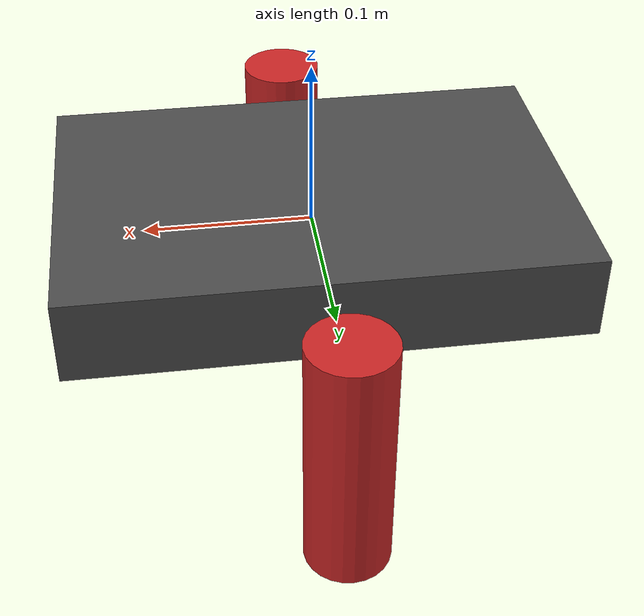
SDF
<sdf version='1.6'>
    <model name='magnus_wings'>

        <link name="base_link">
            <pose frame=''>0 0 0 0 -0 0</pose>
            <inertial>
                <pose frame=''>0 0 0 0 -0 0</pose>
                <mass>0.0</mass>
                <inertia>
                    <ixx>0</ixx>
                    <ixy>0</ixy>
                    <ixz>0</ixz>
                    <iyy>0</iyy>
                    <iyz>0</iyz>
                    <izz>0</izz>
                </inertia>
            </inertial>
            <collision name='base_link_collision'>
                <pose frame=''>0 0 0 0 -0 0</pose>
                <geometry>
                <box>
                    <size>0.2 0.3 0.01</size>
                </box>
                </geometry>
                <surface>
                <contact>
                    <ode>
                    <min_depth>0.001</min_depth>
                    <max_vel>0</max_vel>
                    </ode>
                </contact>
                <friction>
                    <ode/>
                </friction>
                </surface>
            </collision>
            <visual name='base_link_visual'>
                <pose frame=''>0 0 0 0 -0 0</pose>
                <geometry>
                    <box>
                        <size>0.3 0.2 0.05</size>
                    </box>
                </geometry>
                <material>
                <script>
                    <name>Gazebo/DarkGrey</name>
                    <uri>file://media/materials/scripts/gazebo.material</uri>
                </script>
                </material>
            </visual>
            <gravity>1</gravity>
            <velocity_decay/>
        </link>

        <link name="left_wing">
            <parent>base_link</parent>
            <pose frame=''>0 0.15 -0.05 1.5708 0 0 0</pose>
            <inertial>
                <pose frame=''>0 0 0 0 -0 0</pose>
                <mass>0.06</mass>
                <inertia>
                    <ixx>0.000121875</ixx>
                    <ixy>0</ixy>
                    <ixz>0</ixz>
                    <iyy>1.875e-05</iyy>
                    <iyz>0</iyz>
                    <izz>0.000121875</izz>
                </inertia>
            </inertial>
            <collision name="left_wing_collision">
                <geometry>
                <cylinder>
                    <radius>0.025</radius>
                    <length>0.15</length>
                </cylinder>
                </geometry>
            </collision>
            <visual name="left_wing_visual">
                <pose frame=''>0 0 0 0 -0 0</pose>
                <geometry>
                <cylinder>
                    <radius>0.025</radius>
                    <length>0.15</length>
                </cylinder>
                </geometry>
                <material>
                <script>
                    <name>Gazebo/Red</name>
                    <uri>file://media/materials/scripts/gazebo.material</uri>
                </script>
                </material>
            </visual>
            <gravity>1</gravity>
            <velocity_decay/>
        </link>

        <joint name='left_wing_joint' type='revolute'>
            <child>left_wing</child>
            <parent>base_link</parent>
            <axis>
                <xyz>0 0 -1</xyz>
                <limit>
                <lower>-1e+16</lower>
                <upper>1e+16</upper>
                </limit>
                <dynamics>
                <damping>0</damping>
                <friction>0</friction>
                <spring_reference>0</spring_reference>
                <spring_stiffness>0</spring_stiffness>
                </dynamics>
                <use_parent_model_frame>1</use_parent_model_frame>
            </axis>
        </joint>

        <link name="right_wing">
            <parent>base_link</parent>
            <pose frame=''>0 -0.15 -0.05 1.5708 0 0 0</pose>
            <inertial>
                <pose frame=''>0 0 0 0 -0 0</pose>
                <mass>0.06</mass>
                <inertia>
                <ixx>0.000121875</ixx>
                <ixy>0</ixy>
                <ixz>0</ixz>
                <iyy>1.875e-05</iyy>
                <iyz>0</iyz>
                <izz>0.000121875</izz>
                </inertia>
            </inertial>
            <collision name="right_wing_collision">
                <geometry>
                <cylinder>
                    <radius>0.025</radius>
                    <length>0.15</length>
                </cylinder>
                </geometry>
            </collision>
            <visual name="right_wing_visual">
                <pose frame=''>0 0 0 0 -0 0</pose>
                <geometry>
                <cylinder>
                    <radius>0.025</radius>
                    <length>0.15</length>
                </cylinder>
                </geometry>
                <material>
                <script>
                    <name>Gazebo/Red</name>
                    <uri>file://media/materials/scripts/gazebo.material</uri>
                </script>
                </material>
            </visual>
            <gravity>1</gravity>
            <velocity_decay/>
        </link>

        <joint name='right_wing_joint' type='revolute'>
            <child>right_wing</child>
            <parent>base_link</parent>
            <axis>
                <xyz>0 0 1</xyz>
                <limit>
                <lower>-1e+16</lower>
                <upper>1e+16</upper>
                </limit>
                <dynamics>
                <damping>0</damping>
                <friction>0</friction>
                <spring_reference>0</spring_reference>
                <spring_stiffness>0</spring_stiffness>
                </dynamics>
                <use_parent_model_frame>1</use_parent_model_frame>
            </axis>
        </joint>

    </model>
</sdf>
